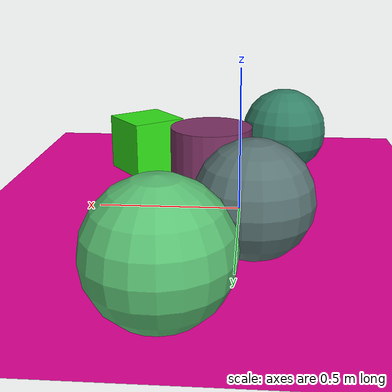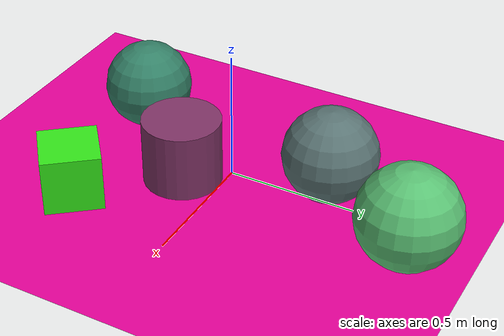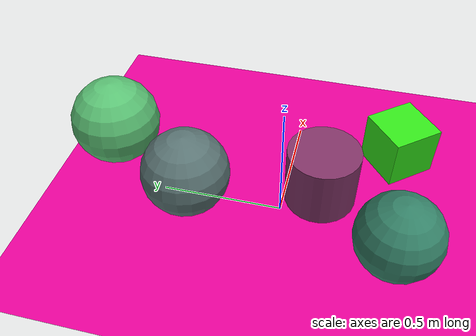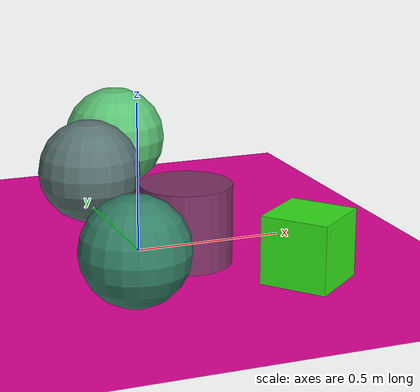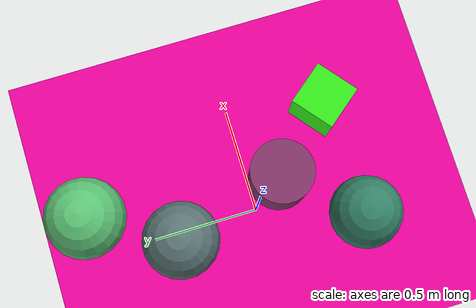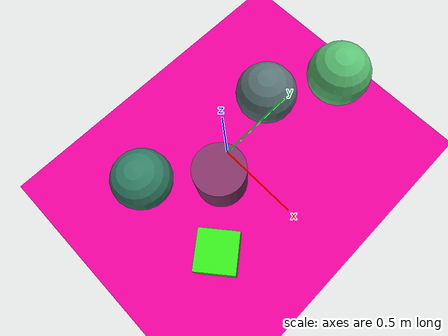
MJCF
<mujoco>
   <asset>
<texture type="skybox" builtin="gradient" rgb1="0.5 0.4 0.4" rgb2="0.9 0.8 0.9" width="500" height="500"/>
<texture name="checker_0" builtin="checker" rgb1="0.1 0.7 0.6" rgb2="0.6 0.2 0.3" width="500" height="500"/>
<texture name="flat_1" builtin="flat" rgb1="0.5 0.2 0.4" rgb2="0.5 0.2 0.4"  width="500" height="500"/>
<texture name="flat_2" builtin="flat" rgb1="0.2 0.9 0.1" rgb2="0.2 0.9 0.1"  width="500" height="500"/>
<texture name="checker_3" builtin="checker" rgb1="0.4 0.3 0.2" rgb2="0.0 0.7 0.6" width="500" height="500"/>
<texture name="checker_4" builtin="checker" rgb1="0.3 0.5 0.3" rgb2="0.4 1.0 0.6" width="500" height="500"/><material name="checker_0_mat" reflectance="0.5536393667071472" texrepeat="7 7" texture="checker_0" texuniform="false" />
<material name="flat_1_mat" reflectance="0.10097257009353078" texture="flat_1" texuniform="true"/>
<material name="flat_2_mat" reflectance="0.15671782902844933" texture="flat_2" texuniform="true"/>
<material name="checker_3_mat" reflectance="0.5453588583054583" texrepeat="3 3" texture="checker_3" texuniform="false" />
<material name="checker_4_mat" reflectance="0.11412395625857275" texrepeat="4 4" texture="checker_4" texuniform="false" />
   </asset>

   <worldbody>
     <geom type="plane" size="1 1 0.1" rgba="0.9 0.0 0.6 1" />
<light pos="-0.609508760215125 -0.9380437271656648 2" dir="0 0 -1" cutoff="90" diffuse="1 1 1" specular="1 1 1"/>
<geom type="sphere" pos="-0.05 0.38 0.18" size="0.18 0.18 0.18" material="checker_0_mat" euler="0 0 44" />
<geom type="cylinder" pos="0.11 -0.15 0.13" size="0.15 0.13 0.13" material="flat_1_mat" euler="0 0 38" />
<geom type="box" pos="0.4 -0.45 0.11" size="0.11 0.11 0.11" material="flat_2_mat" euler="0 0 39" />
<geom type="sphere" pos="-0.17 -0.47 0.17" size="0.17 0.17 0.17" material="checker_3_mat" euler="0 0 4" />
<geom type="sphere" pos="0.17 0.77 0.19" size="0.19 0.19 0.19" material="checker_4_mat" euler="0 0 7" /><camera euler="60 0 180" fovy="60" name="camera1" pos="-0.2 -1.5 1"></camera>   </worldbody>
   <visual>
      <headlight diffuse="0.7 0.7 0.7"/>
   </visual>
</mujoco>
